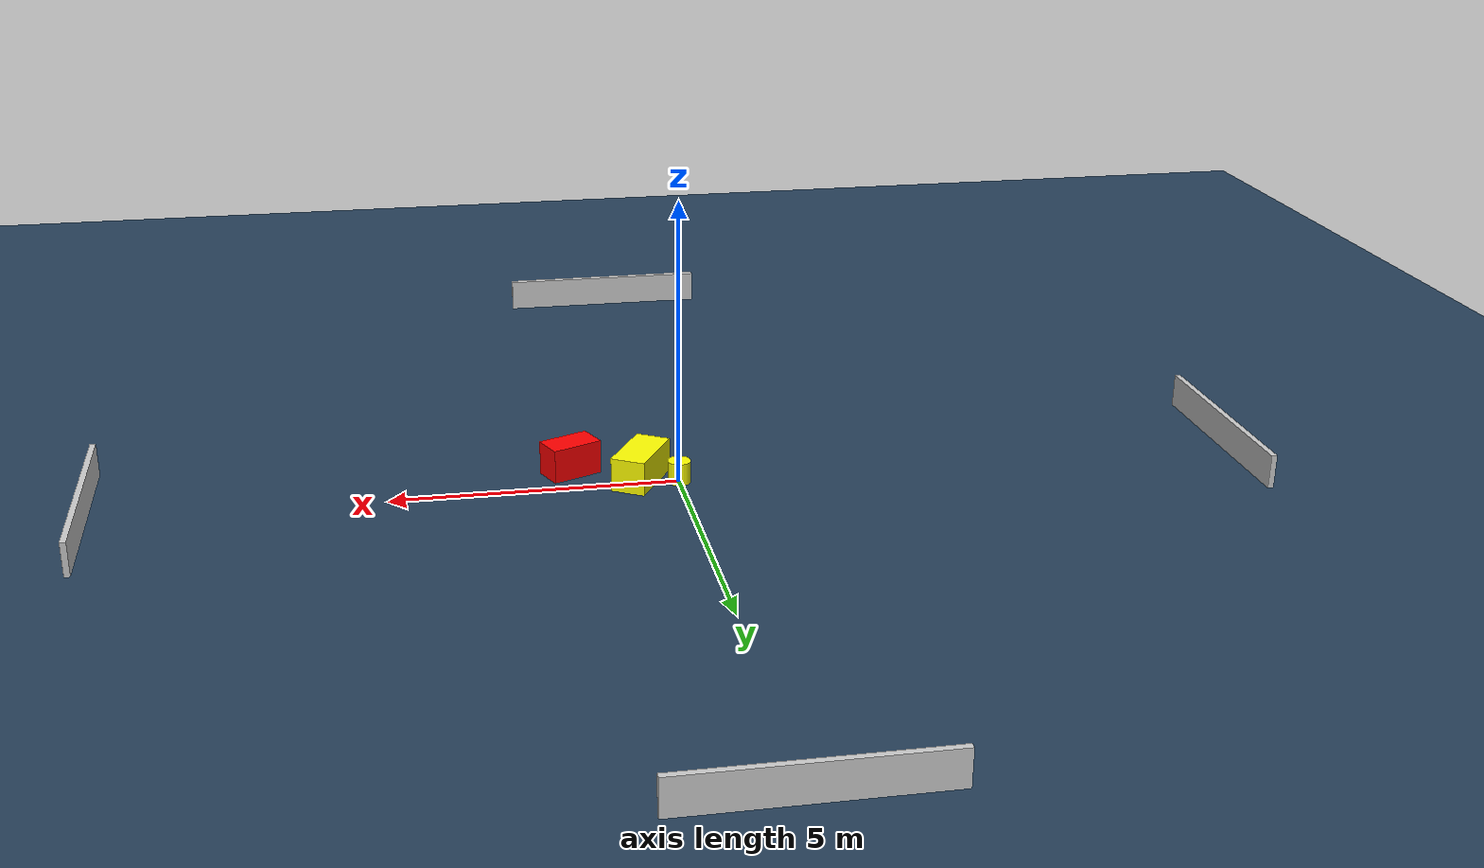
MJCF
<?xml version="1.0" ?>
<mujoco model="generated_environment">
  <option timestep="0.01" integrator="RK4" cone="elliptic"/>
  <default>
    <geom density="1"/>
  </default>
  <asset>
    <texture builtin="gradient" height="3072" name="skybox" rgb1="0.3 0.5 0.7" rgb2="0 0 0" type="skybox" width="512"/>
    <texture builtin="checker" height="300" name="groundplane" rgb1="0.2 0.3 0.4" rgb2="0.1 0.2 0.3" type="2d" width="300"/>
    <material name="groundplane" reflectance="0.2" texrepeat="5 5" texture="groundplane"/>
  </asset>
  <worldbody>
    <light dir="0 0 -1" directional="true" pos="0 0 1.5"/>
    <geom condim="3" friction="0.5 0.005 0.001" material="groundplane" name="floor" pos="0 0 0" size="0 0 0.05" type="plane"/>
    <body name="walls">
      <geom name="wall_1" condim="4" pos="-10.0 0.0 0.3" rgba="0.800000011920929 0.800000011920929 0.800000011920929 1.0" size="0.05 2.0 0.3" type="box"/>
      <geom name="wall_2" condim="4" pos="10.0 0.0 0.3" rgba="0.800000011920929 0.800000011920929 0.800000011920929 1.0" size="0.05 2.0 0.3" type="box"/>
      <geom name="wall_3" condim="4" pos="0.0 -10.0 0.3" rgba="0.800000011920929 0.800000011920929 0.800000011920929 1.0" size="2.0 0.05 0.3" type="box"/>
      <geom name="wall_4" condim="4" pos="0.0 10.0 0.3" rgba="0.800000011920929 0.800000011920929 0.800000011920929 1.0" size="2.0 0.05 0.3" type="box"/>
    </body>
    <body name="robot">
      <joint name="joint_x" type="slide" pos="0 0 0" axis="1 0 0"/>
      <joint name="joint_y" type="slide" pos="0 0 0" axis="0 1 0"/>
      <geom name="robot" type="cylinder" pos="0.0 0.0 0.2" size="0.2 0.2 0.0" mass="5.0" friction="1.0 0.005 0.0001" condim="4" rgba="1.0 1.0 0.0 1.0"/>
    </body>
    <body name="obstacle_1_movable">
      <geom name="obstacle_1_movable" condim="4" pos="0.6485285336937516 -0.17588326857455258 0.3" euler="0 0 329.28432437527016" friction="0.0 0.005 0.001" rgba="1.0 1.0 0.0 1.0" size="0.305898478714558 0.6013265167726698 0.3" type="box" mass="0.1"/>
      <joint type="free"/>
    </body>
    <body name="obstacle_2_static">
      <geom name="obstacle_2_static" condim="4" pos="1.809329271236159 -0.7080709124348663 0.3" euler="0 0 293.3250119491336" friction="0.0 0.005 0.001" rgba="1.0 0.0 0.0 1.0" size="0.26852034011506243 0.4609219795775923 0.3" type="box"/>
    </body>
  </worldbody>
  <actuator>
    <motor name="actuator_x" joint="joint_x" gear="1" ctrlrange="-1 1"/>
    <motor name="actuator_y" joint="joint_y" gear="1" ctrlrange="-1 1"/>
  </actuator>
</mujoco>
